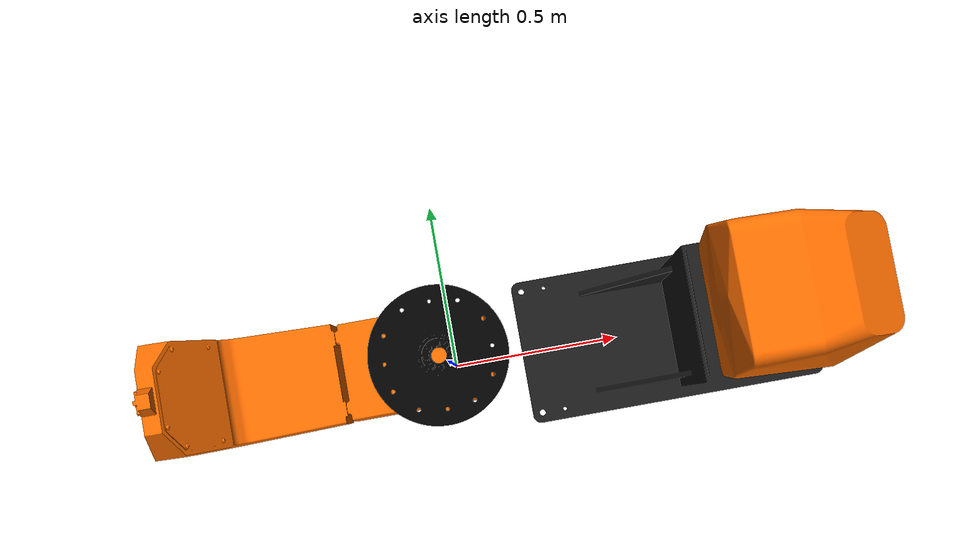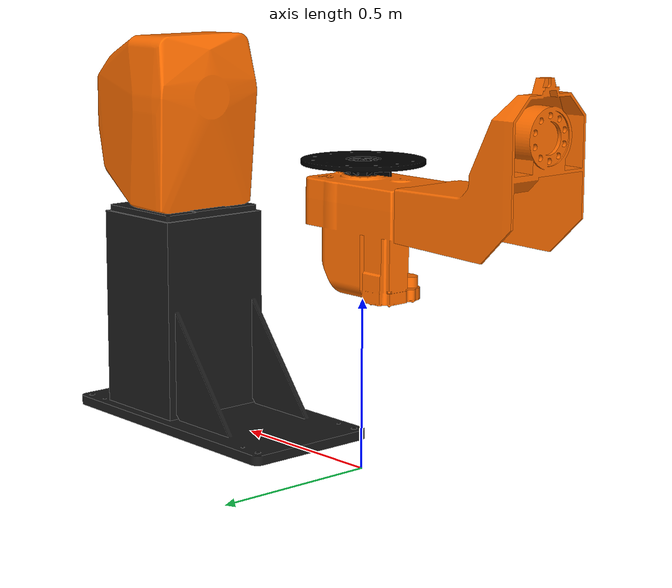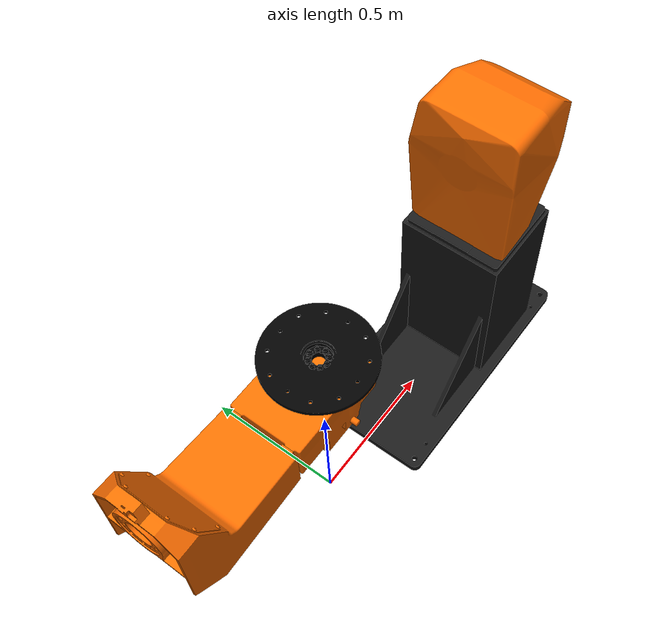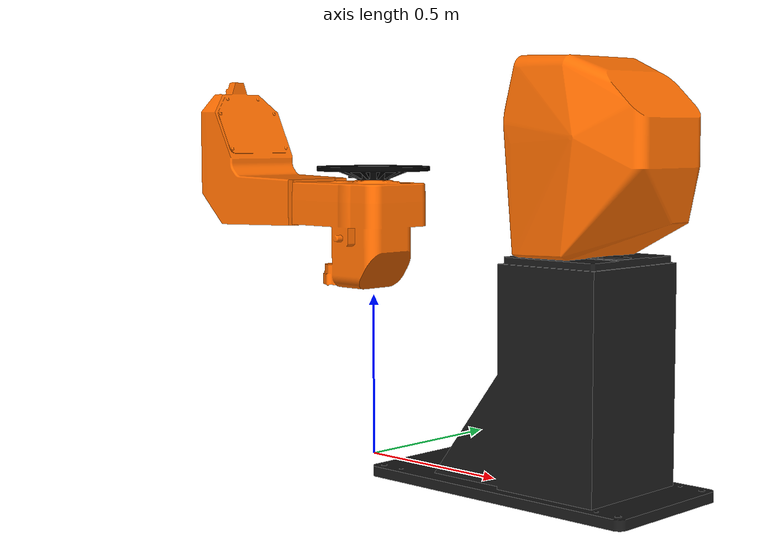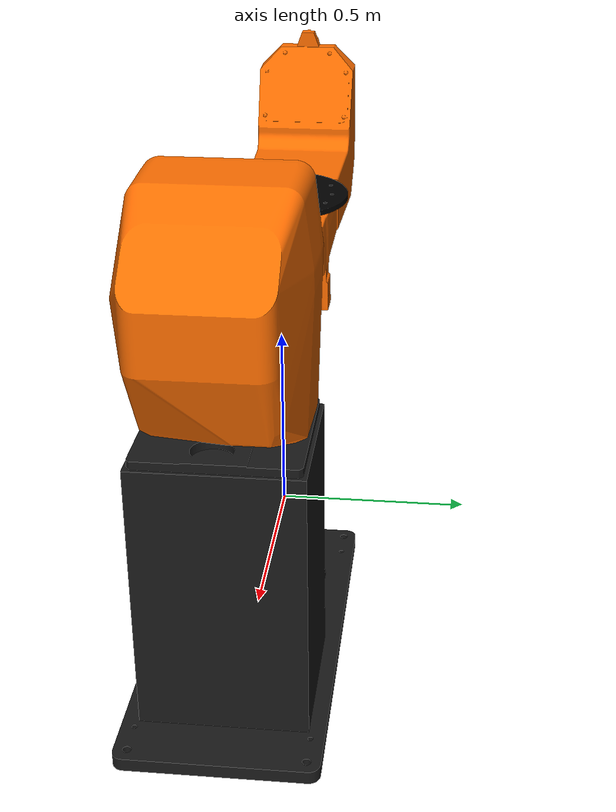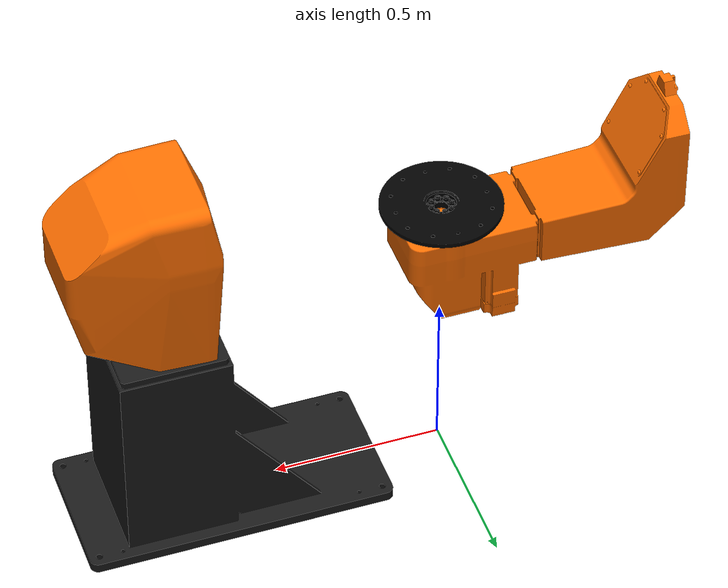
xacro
<?xml version="1.0" ?>
<robot name="irbp_a250" xmlns:xacro="http://ros.org/wiki/xacro">
 <xacro:property name="name" value="irbp_a250/" />

  <link name="${name}base_link">
    <visual>
      <geometry>
        <mesh filename="package://etna_workcell/meshes/irbp_a250/visual/irbp_a250_0.stl" />
      </geometry>
      <material name="black">
        <color rgba="0.1 0.1 0.1 1" />
      </material>
    </visual>
    <collision>
      <geometry>
        <mesh filename="package://etna_workcell/meshes/irbp_a250/collision/irbp_a250_0.stl" />
      </geometry>
      <material name="yellow">
        <color rgba="0 1 1 1" />
      </material>
    </collision>
  </link>
  <link name="${name}link_1">
    <visual>
      <geometry>
        <mesh filename="package://etna_workcell/meshes/irbp_a250/visual/irbp_a250_1.stl" />
      </geometry>
      <material name="abb_orange">
        <color rgba="1 0.43 0 1" />
      </material>
    </visual>
    <collision>
      <geometry>
        <mesh filename="package://etna_workcell/meshes/irbp_a250/collision/irbp_a250_1.stl" />
      </geometry>
      <material name="yellow" />
    </collision>
  </link>
  <link name="${name}link_2">
    <visual>
      <geometry>
        <mesh filename="package://etna_workcell/meshes/irbp_a250/visual/irbp_a250_2.stl" />
      </geometry>
      <material name="abb_orange" />
    </visual>
    <collision>
      <geometry>
        <mesh filename="package://etna_workcell/meshes/irbp_a250/collision/irbp_a250_2.stl" />
      </geometry>
      <material name="yellow" />
    </collision>
  </link>
  <link name="${name}link_3">
    <visual>
      <geometry>
        <mesh filename="package://etna_workcell/meshes/irbp_a250/visual/irbp_a250_3.stl" />
      </geometry>
      <material name="abb_orange" />
    </visual>
    <collision>
      <geometry>
        <mesh filename="package://etna_workcell/meshes/irbp_a250/collision/irbp_a250_3.stl" />
      </geometry>
      <material name="yellow" />
    </collision>
  </link>
  <link name="${name}link_4">
    <visual>
      <geometry>
        <mesh filename="package://etna_workcell/meshes/irbp_a250/visual/irbp_a250_4.stl" />
      </geometry>
      <material name="black">
        <color rgba="0 0 0 1" />
      </material>
    </visual>
    <collision>
      <geometry>
        <mesh filename="package://etna_workcell/meshes/irbp_a250/collision/irbp_a250_4.stl" />
      </geometry>
      <material name="yellow" />
    </collision>
  </link>
  <link name="${name}tool0" />

  <joint name="${name}joint1" type="fixed">
    <parent link="${name}base_link" />
    <child link="${name}link_1" />
    <origin rpy="0 0 0" xyz="0 0 0" />
    <axis xyz="0 0 1" />
  </joint>
  <joint name="${name}joint2" type="fixed"> <!--"revolute"-->
    <parent link="${name}link_1" />
    <child link="${name}link_2" />
    <origin rpy="0 0 0" xyz="0 0 1.020" />
    <axis xyz="1 0 0" />
    <limit effort="100" lower="-3.1590" upper="3.1590" velocity="2.6180" />
  </joint>
  <joint name="${name}joint3" type="fixed">
    <parent link="${name}link_2" />
    <child link="${name}link_3" />
    <origin rpy="0 0 0" xyz="0 0 0" />
    <axis xyz="0 1 0" />
  </joint>
  <joint name="${name}joint4" type="fixed"> <!--"continuous"-->
    <parent link="${name}link_3" />
    <child link="${name}link_4" />
    <origin rpy="0 0 0" xyz="0 0 -0.120" />
    <axis xyz="0 0 1" />
    <limit effort="100" velocity="3.1416" />
  </joint>
  <joint name="${name}joint4-tool0" type="fixed">
    <parent link="${name}link_4" />
    <child link="${name}tool0" />
    <origin rpy="0 0 0" xyz="0 0 0" />
  </joint>
</robot>
